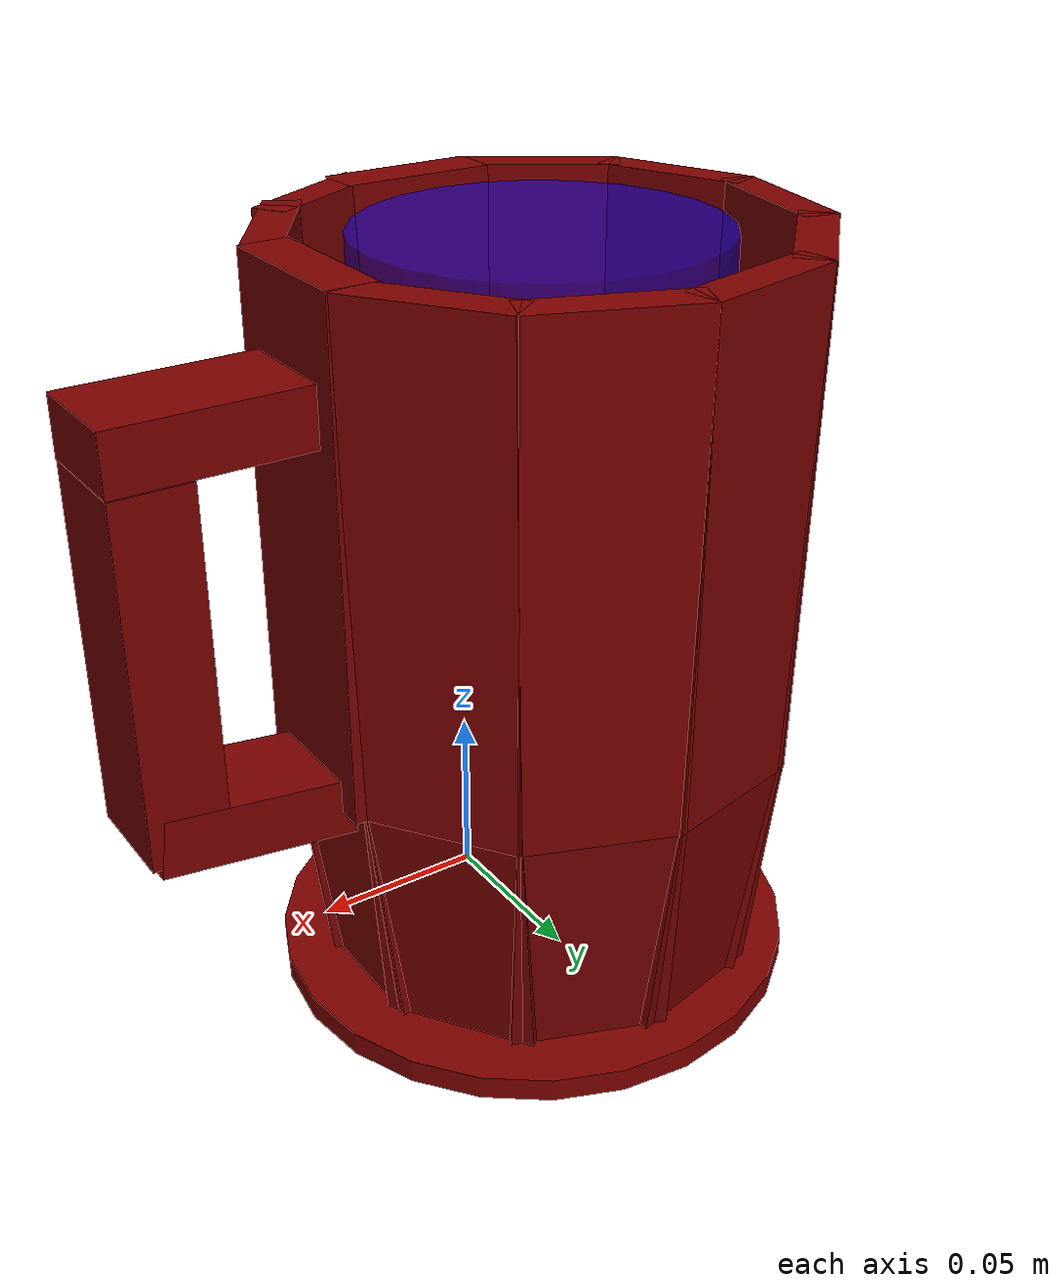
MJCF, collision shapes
<mujoco model="model">
  <option timestep="0.002" gravity="0.0 0.0 -9.81"/>
  <compiler angle="radian"/>
  <asset>
    <mesh file="visuals/blade.obj" name="blade_vis"/>
    <mesh file="visuals/pitcher.obj" name="pitcher_vis"/>
    <mesh file="visuals/pitcher_main.obj" name="pitcher_main_vis"/>
    <texture file="visuals/T_BC001.png" name="pitcher_material" type="2d"/>
    <material name="pitcher_material" rgba="1 1 1 1.0" texture="pitcher_material" shininess="0.4472135901451111" specular="1"/>
    <texture file="visuals/T_BC001.png" name="blade_material" type="2d"/>
    <material name="blade_material" rgba="1 1 1 1.0" texture="blade_material" shininess="0.4472135901451111" specular="1"/>
    <material name="pitcher_main_material" rgba="0.5881999731063843 0.5881999731063843 0.5881999731063843 0.800000011920929" shininess="0.10000002384185791" specular="0.33333333333333337"/>
  </asset>
  <default>
    <default class="visual">
      <geom conaffinity="0" contype="0" group="1" type="mesh"/>
    </default>
    <default class="collision">
      <geom group="0" rgba="0.5 0 0 0.5" density="1.0" solref="0.004 1" solimp="0.998 0.998 0.001"/>
    </default>
    <default class="spawn">
      <geom group="0" rgba="1 1 1 0.5" contype="0" conaffinity="0"/>
      <site group="0" rgba="1 1 1 0.5"/>
    </default>
    <default class="region">
      <geom group="1" conaffinity="0" contype="0" rgba="0 1 0 0" mass="0"/>
    </default>
  </default>
  <worldbody>
    <body>
      <body name="object">
        <body name="pitcher">
          <geom mesh="pitcher_vis" type="mesh" solimp="0.998 0.998 0.001" solref="0.001 1" friction="0.95 0.3 0.1" class="visual" material="pitcher_material"/>
          <geom type="cylinder" pos="-0.01826130 0.01058441 -0.01807209" size="0.013563878834247589 0.0030004368163645267" quat="0.70710688829422 0.0 0.0 -0.7071066498756409" class="collision"/>
          <geom class="collision" type="box" pos="0.08159569 0.01001288 0.16783240" size="0.02891906350851059 0.015560477040708065 0.008479948155581951" quat="1.0 0.0 0.0 0.0" name="pitcher_handle_1"/>
          <geom class="collision" type="box" pos="0.09916771 0.01001288 0.10729443" size="0.011199464090168476 0.015560487285256386 0.051797185093164444" quat="1.0 0.0 0.0 0.0" name="pitcher_handle_2"/>
          <geom class="collision" type="box" pos="0.07771460 0.01001288 0.05714760" size="0.02946845255792141 0.015560523606836796 0.00854925811290741" quat="0.9980339407920837 0.0 -0.06267547607421875 0.0" name="pitcher_handle_0"/>
          <geom type="cylinder" pos="-0.01792707 0.01009008 -0.02435832" size="0.07933948934078217 0.0035974886268377304" quat="1.0 0.0 0.0 0.0" class="collision"/>
          <body name="blade">
            <geom mesh="blade_vis" type="mesh" solimp="0.998 0.998 0.001" solref="0.001 1" friction="0.95 0.3 0.1" class="visual" material="blade_material"/>
            <geom type="box" pos="0.00204605 0.01669492 0.00917565" size="0.0015862119616940618 0.018787633627653122 0.008514349348843098" quat="0.22424311935901642 0.4206318259239197 -0.4267450273036957 0.7685522437095642" class="collision"/>
            <geom type="box" pos="-0.04108375 0.00226118 0.00607678" size="0.0014495250070467591 0.018787631765007973 0.00851509440690279" quat="0.46829313039779663 0.6533452272415161 -0.34451261162757874 0.48492538928985596" class="collision"/>
            <geom type="box" pos="-0.01246180 -0.01041368 -0.00240662" size="0.0014507644809782505 0.018769260495901108 0.00669638067483902" quat="0.3194257915019989 -0.6354911923408508 -0.12435971200466156 -0.6918473839759827" class="collision"/>
            <geom type="box" pos="-0.02522345 0.03246708 -0.00698720" size="0.001831724657677114 0.01876925863325596 0.007409302052110434" quat="0.037183113396167755 0.6721182465553284 0.3039575219154358 0.67415452003479" class="collision"/>
            <geom type="cylinder" pos="-0.01812364 0.01042146 -0.00537061" size="0.010318148881196976 0.008342823013663292" quat="1.0 0.0 0.0 0.0" class="collision"/>
          </body>
          <body name="pitcher_main">
            <geom class="region" type="cylinder" size="0.05175633355975151 0.08882526308298111" pos="-0.02064804 0.00991137 0.11059178" rgba="0 0 1 0.5" name="reg_int"/>
            <geom mesh="pitcher_main_vis" type="mesh" solimp="0.998 0.998 0.001" solref="0.001 1" friction="0.95 0.3 0.1" class="visual" material="pitcher_main_material"/>
            <geom type="box" pos="-0.02086875 -0.05912482 0.12695498" size="0.023175766691565514 0.007076061796396971 0.07389082759618759" quat="1.0 0.0 0.0 0.0" class="collision"/>
            <geom type="box" pos="-0.02086875 -0.05295889 0.01770921" size="0.023175908252596855 0.005516691133379936 0.03700769692659378" quat="0.9981673955917358 0.06051315739750862 0.0 0.0" class="collision"/>
            <geom type="box" pos="-0.06003613 -0.04693161 0.12695498" size="0.023175911977887154 0.005516692530363798 0.07379065454006195" quat="0.9549254775047302 0.010099019855260849 -0.003137363586574793 -0.2966572344303131" class="collision"/>
            <geom type="box" pos="-0.05654230 -0.04185108 0.01770921" size="0.023175908252596855 0.005516690202057362 0.03700769692659378" quat="0.953228771686554 0.05778857693076134 -0.017952607944607735 -0.29613015055656433" class="collision"/>
            <geom type="box" pos="-0.07916146 -0.01370328 0.01770921" size="0.023175908252596855 0.005516691133379936 0.03700769692659378" quat="0.8282976746559143 0.05021476000547409 -0.03376825898885727 -0.5570108890533447" class="collision"/>
            <geom type="box" pos="-0.08487194 -0.01602906 0.12695498" size="0.023175911977887154 0.005516692530363798 0.07379065454006195" quat="0.8297720551490784 0.008775432594120502 -0.0059012724086642265 -0.558002233505249" class="collision"/>
            <geom type="box" pos="-0.08871573 0.02308562 0.12695498" size="0.023175911977887154 0.0055166929960250854 0.07379065454006195" quat="0.6369348168373108 0.006736038718372583 -0.008152233436703682 -0.7708451151847839" class="collision"/>
            <geom type="box" pos="-0.08266037 0.02192311 0.01770921" size="0.023175908252596855 0.005516691133379936 0.03700769692659378" quat="0.6358030438423157 0.03854496777057648 -0.04664872959256172 -0.7694755792617798" class="collision"/>
            <geom type="box" pos="-0.06591754 0.05396626 0.01770921" size="0.023175908252596855 0.005516690202057362 0.03700769692659378" quat="0.38814669847488403 0.023531027138233185 -0.05575042590498924 -0.9196087718009949" class="collision"/>
            <geom type="box" pos="-0.07033549 0.05826747 0.12695498" size="0.023175911977887154 0.005516692530363798 0.07379065454006195" quat="0.3888375759124756 0.004112234804779291 -0.009742825292050838 -0.9212456345558167" class="collision"/>
            <geom type="box" pos="-0.03564053 0.07754081 0.12695500" size="0.023175911977887154 0.005516692530363798 0.07379065454006195" quat="0.10804449766874313 0.001142653520219028 -0.01051327120512724 -0.9940897822380066" class="collision"/>
            <geom type="box" pos="-0.03431587 0.07151885 0.01770921" size="0.023175908252596855 0.005516691133379936 0.03700769692659378" quat="0.1078525260090828 0.006538454908877611 -0.06015866994857788 -0.9923235177993774" class="collision"/>
            <geom type="box" pos="0.00226276 0.06859405 0.01770921" size="0.023175908252596855 0.005516691133379936 0.03700769692659378" quat="0.18596415221691132 0.011273913085460663 0.059453509747982025 0.9806913733482361" class="collision"/>
            <geom type="box" pos="0.00452003 0.07433193 0.12695500" size="0.023175911977887154 0.005516692530363798 0.07379065454006195" quat="0.1862950325012207 0.001970204059034586 0.010389959439635277 0.9824369549751282" class="collision"/>
            <geom type="box" pos="0.03642788 0.04876017 0.12695500" size="0.023175911977887154 0.0055166929960250854 0.07379065454006195" quat="0.46849510073661804 0.00495466822758317 0.009342609904706478 0.8834028244018555" class="collision"/>
            <geom type="box" pos="0.03132352 0.04530124 0.01770921" size="0.023175908252596855 0.005516690202057362 0.03700769692659378" quat="0.4676626920700073 0.028351616114377975 0.053460318595170975 0.8818331956863403" class="collision"/>
            <geom type="box" pos="0.04214088 0.00965553 0.01770921" size="0.023175908252596855 0.005516690202057362 0.03700769692659378" quat="0.7075697779655457 0.042895764112472534 0.042682234197854996 0.7040477395057678" class="collision"/>
            <geom type="box" pos="0.04830674 0.00962476 0.12695500" size="0.00719159422442317 0.023210931569337845 0.07389082759618759" quat="1.0 0.0 0.0 0.0" class="collision"/>
            <geom type="box" pos="0.03669833 -0.02833604 0.12695500" size="0.023175911977887154 0.005516692530363798 0.07379065454006195" quat="0.8814740777015686 0.00932223442941904 0.004992952570319176 0.4721139669418335" class="collision"/>
            <geom type="box" pos="0.03156578 -0.02491909 0.01770921" size="0.023175908252596855 0.005516690202057362 0.03700769692659378" quat="0.87990802526474 0.05334360897541046 0.02857060730457306 0.4712749421596527" class="collision"/>
            <geom type="box" pos="0.00905607 -0.04541609 0.01770921" size="0.023175908252596855 0.005516691133379936 0.03700769692659378" quat="0.9677349925041199 0.058668024837970734 0.014828402549028397 0.2445959448814392" class="collision"/>
            <geom type="box" pos="0.01198580 -0.05084152 0.12695500" size="0.023175911977887154 0.005516692530363798 0.07379065454006195" quat="0.9694575071334839 0.010252677835524082 0.002591376891359687 0.24503132700920105" class="collision"/>
          </body>
        </body>
        <geom class="region" name="reg_bbox" density="0" type="box" pos="0.0 0.009329000000000004 0.0862005" size="0.10935 0.07438 0.11440299999999999"/>
      </body>
      <site rgba="0 1 0 0" size="0.005" pos="-0.02082781 0.01001121 0.20801517" name="anchor_site"/>
    </body>
  </worldbody>
</mujoco>
